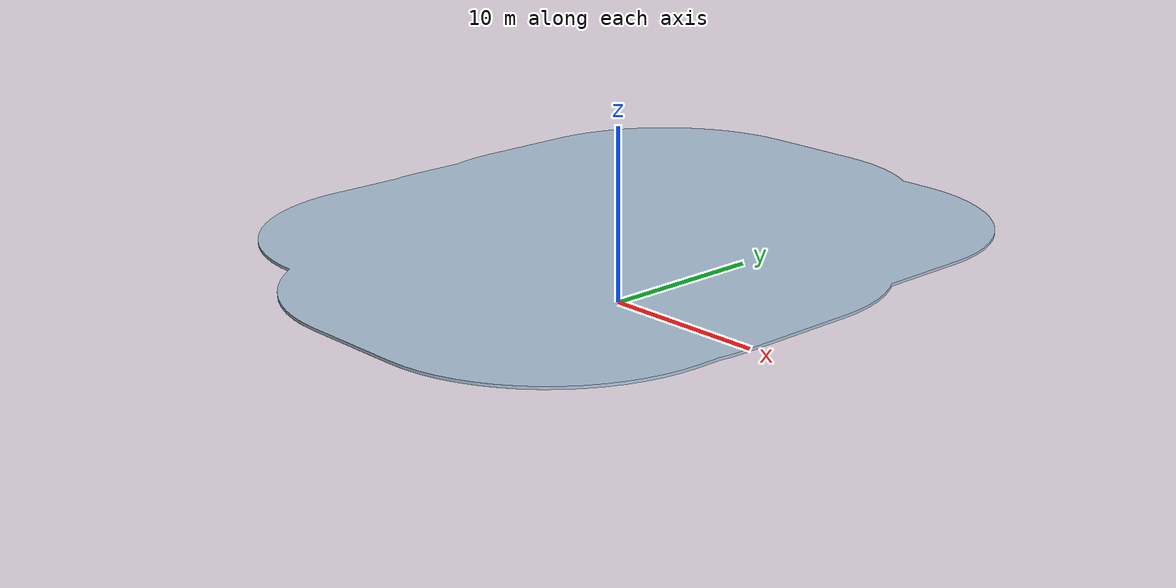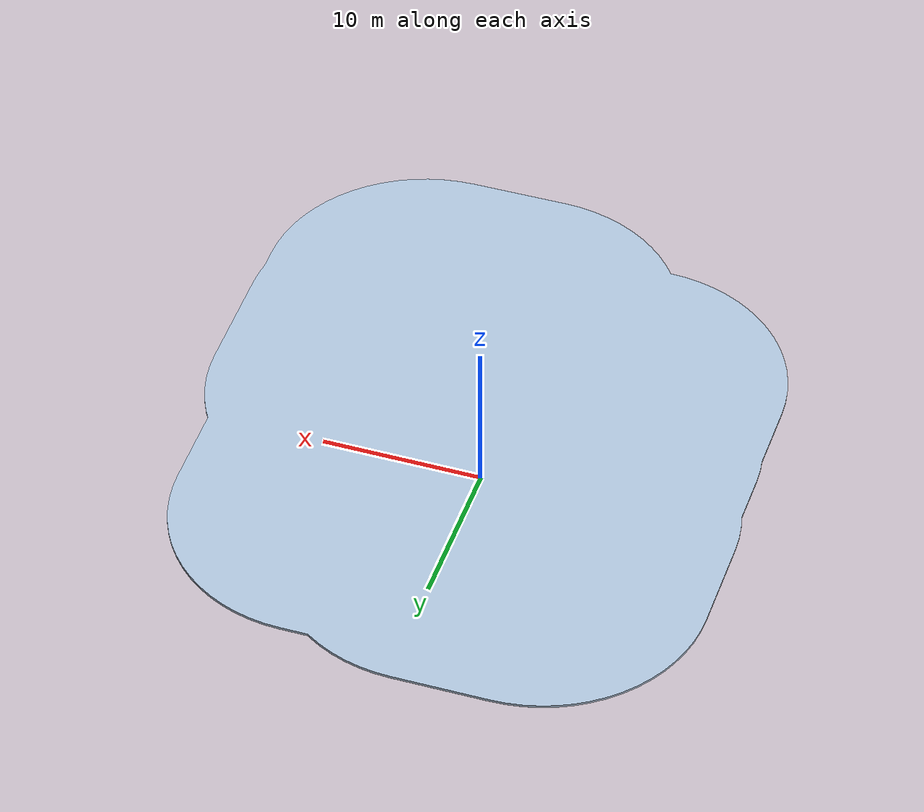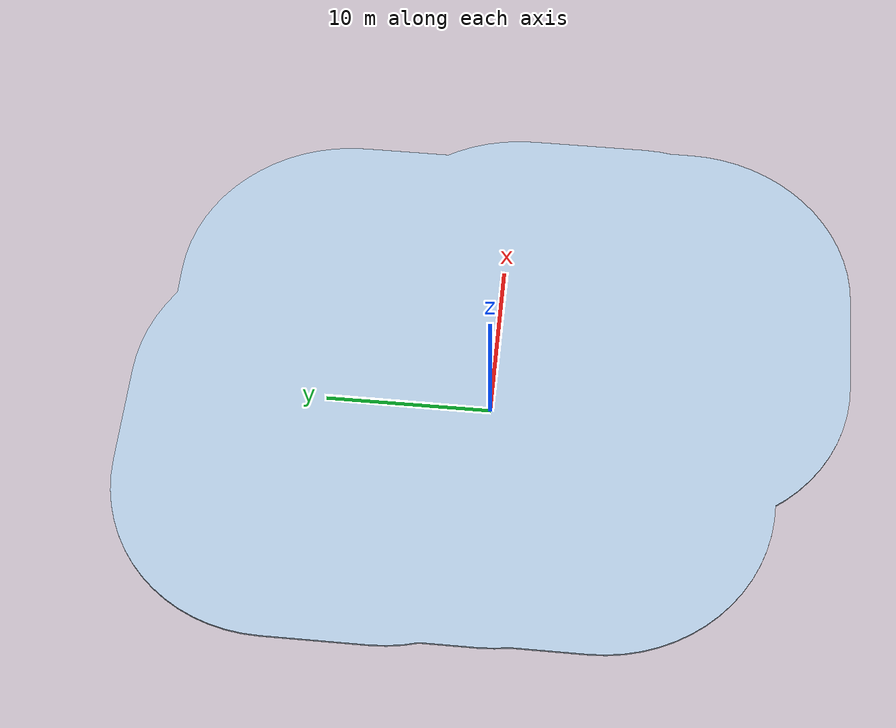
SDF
<?xml version="1.0" ?>
<sdf version="1.6">
  <model name="ceiling_9">
    <pose frame="">0 0 4 0 -0 0</pose>
    <static>1</static>
    <self_collide>0</self_collide>
    <allow_auto_disable>0</allow_auto_disable>
    <link name="mesh">
      <kinematic>0</kinematic>
      <gravity>1</gravity>
      <self_collide>0</self_collide>
      <collision name="collision">
        <geometry>
          <mesh>
            <uri>model://ceiling_9/meshes/kXjrZHoTxe.stl</uri>
            <scale>1 1 1</scale>
          </mesh>
        </geometry>
        <pose frame="">-0.0970547 1.29565 -0.075 0 -0 0</pose>
        <max_contacts>20</max_contacts>
      </collision>
      <visual name="visual">
        <geometry>
          <mesh>
            <uri>model://ceiling_9/meshes/WpCPptBjsI.stl</uri>
            <scale>1 1 1</scale>
          </mesh>
        </geometry>
        <material>
          <ambient>0.67451 0.760784 0.85098 1</ambient>
          <diffuse>0.6745098039215687 0.7607843137254902 0.8509803921568627 1</diffuse>
        </material>
        <pose frame="">-0.0970547 1.29565 -0.075 0 -0 0</pose>
        <cast_shadows>1</cast_shadows>
        <transparency>0.0</transparency>
      </visual>
      <pose frame="">0 0 0 0 -0 0</pose>
    </link>
  </model>
</sdf>
